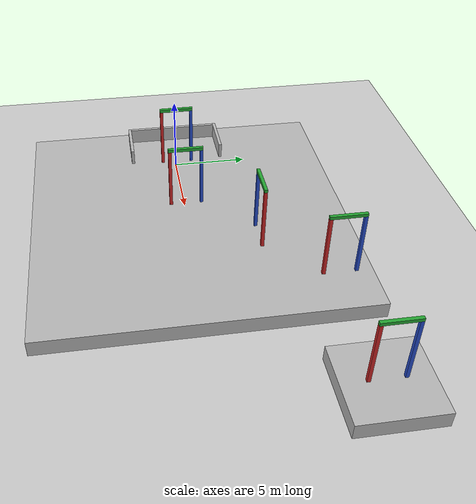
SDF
<sdf version="1.3">
 <world name="default">
  <scene><ambient>0.3 0.3 0.3 1.0</ambient></scene>
  <light type="directional" name="sun">
   <pose>0 0 100 0 0 0</pose>
   <diffuse>0.9 0.9 0.9 1</diffuse>
   <specular>0.1 0.1 0.1 1</specular>
   <attenuation>
    <range>1000</range>
    <constant>0.9</constant>
    <linear>0.01</linear>
    <quadratic>0.001</quadratic>
   </attenuation>
   <direction>-0.2 0.0 -1.0</direction>
  </light>
  <light type="point" name="light_bulb">
   <cast_shadows>false</cast_shadows>
   <pose>7.5 -7 5 0 0 0</pose>
   <diffuse>0.5 0.5 0.5 1</diffuse>
   <specular>0.0 0.0 0.0 1</specular>
   <attenuation>
    <range>80</range>
    <constant>0.9</constant>
    <linear>0.01</linear>
    <quadratic>0.001</quadratic>
   </attenuation>
  </light>
  <include><uri>model://ground_plane</uri></include>
  <model name="starting_pen">
   <pose>-2.0 0 1.5 0 0 0</pose>
   <static>true</static>
   <link name="link">
    <collision name="back_collision"><geometry><box><size>0.2 6 1.0</size></box></geometry></collision>
    <visual name="back_visual">
     <geometry><box><size>0.2 6 1.0</size></box></geometry>
     <material>
      <script><uri>file://media/materials/scripts/drc_qual.material</uri><name>DRCQual/WarningWall</name></script>
     </material>
    </visual>
    <collision name="left_collision">
     <pose>1.4 -3.1 0 0 0 0</pose>
     <geometry><box><size>3 0.2 1.0</size></box></geometry>
    </collision>
    <visual name="left_visual_lower">
     <pose>1.4 -3.1 0.0 0 0 0</pose>
     <geometry><box><size>3 0.2 1.0</size></box></geometry>
     <material>
      <script><uri>file://media/materials/scripts/drc_qual.material</uri><name>DRCQual/WarningWall</name></script>
     </material>
    </visual>
    <collision name="right_collision">
     <pose>1.4 3.1 0 0 0 0</pose>
     <geometry><box><size>3 0.2 1.0</size></box></geometry>
    </collision>
    <visual name="right_visual">
     <pose>1.4 3.1 0 0 0 0</pose>
     <geometry><box><size>3 0.2 1.0</size></box></geometry>
     <material>
      <script><uri>file://media/materials/scripts/drc_qual.material</uri><name>DRCQual/WarningWall</name></script>
     </material>
    </visual>
   </link>
  </model>
  <include><name>gate_0</name><uri>model://gate</uri><pose>1 0 3.0 0 0 0</pose></include>
  <include><name>gate_1</name><uri>model://gate</uri><pose>6 0 3.0 0 0 0</pose></include>
  <include><name>gate_2</name><uri>model://gate</uri><pose>10 4 3.0 0 0 1.5707</pose></include>
  <include><name>gate_3</name><uri>model://gate</uri><pose>14 8 3.0 0 0 0</pose></include>
  <include><name>gate_4</name><uri>model://gate</uri><pose>22 8 3.0 0 0 0</pose></include>
  <include><name>platform_1</name><uri>model://platform_1</uri><pose>7 0 .5 0 0 0</pose></include>
  <include><name>platform_2</name><uri>model://platform_2</uri><pose>22 8 .5 0 0 0</pose></include>
 </world>
</sdf>

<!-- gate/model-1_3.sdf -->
<sdf version="1.3">

  <model name="gate">
    <static>true</static>
    <pose>0 0 2.0 0 0 0</pose>
    <link name="link">
      <collision name="right_collision">
        <pose>0 -1.0 0 0 0 0</pose>
        <geometry>
          <box>
            <size>0.2 0.2 4.0</size>
          </box>
        </geometry>
      </collision>
      <visual name="right_visual">
        <pose>0 -1.0 0 0 0 0</pose>
        <geometry>
          <box>
            <size>0.2 0.2 4.0</size>
          </box>
        </geometry>
        <material>
          <script>
            <uri>model://gate/materials/scripts/gate.material</uri>
            <uri>model://gate/materials/textures</uri>
            <name>vrc/red_gate</name>
          </script>
        </material>
      </visual>

      <collision name="left_collision">
        <pose>0 1.0 0 0 0 0</pose>
        <geometry>
          <box>
            <size>0.2 0.2 4.0</size>
          </box>
        </geometry>
      </collision>
      <visual name="left_visual">
        <pose>0 1.0 0 0 0 0</pose>
        <geometry>
          <box>
            <size>0.2 0.2 4.0</size>
          </box>
        </geometry>
        <material>
          <script>
            <uri>model://gate/materials/scripts/gate.material</uri>
            <uri>model://gate/materials/textures</uri>
            <name>vrc/blue_gate</name>
          </script>
        </material>
      </visual>

      <collision name="top_collision">
        <pose>0 0 2.1 0 0 0</pose>
        <geometry>
          <box>
            <size>0.2 2.2 0.2</size>
          </box>
        </geometry>
      </collision>
      <visual name="top_visual">
        <pose>0 0 2.1 0 0 0</pose>
        <geometry>
          <box>
            <size>0.2 2.2 0.2</size>
          </box>
        </geometry>
        <material>
          <script>
            <uri>model://gate/materials/scripts/gate.material</uri>
            <uri>model://gate/materials/textures</uri>
            <name>vrc/green_gate</name>
          </script>
        </material>
      </visual>
    </link>
  </model>
</sdf>

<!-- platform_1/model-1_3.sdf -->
<sdf version="1.3">
  <model name="platform_1">
    <pose>0 0 .5 0 0 0</pose>
    <static>true</static>
    <link name="link">
      <collision name="collision">
        <geometry>
          <box>
            <size>20 20 1</size>
          </box>
        </geometry>
      </collision>

      <visual name="visual">
        <geometry>
          <mesh>
            <uri>model://platform_1/meshes/platform_1.dae</uri>
          </mesh>
        </geometry>
      </visual>
    </link>
  </model>
</sdf>

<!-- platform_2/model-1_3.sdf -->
<sdf version="1.3">
  <model name="platform_2">
    <pose>0 0 .5 0 0 0</pose>
    <static>true</static>
    <link name="link">
      <collision name="collision">
        <geometry>
          <box>
            <size>5 5 1</size>
          </box>
        </geometry>
      </collision>

      <visual name="visual">
        <geometry>
          <mesh>
            <uri>model://platform_2/meshes/platform_2.dae</uri>
          </mesh>
        </geometry>
      </visual>
    </link>
  </model>
</sdf>
